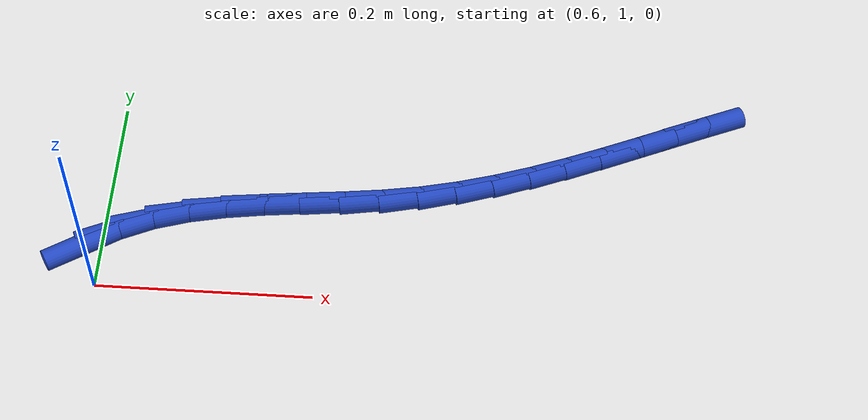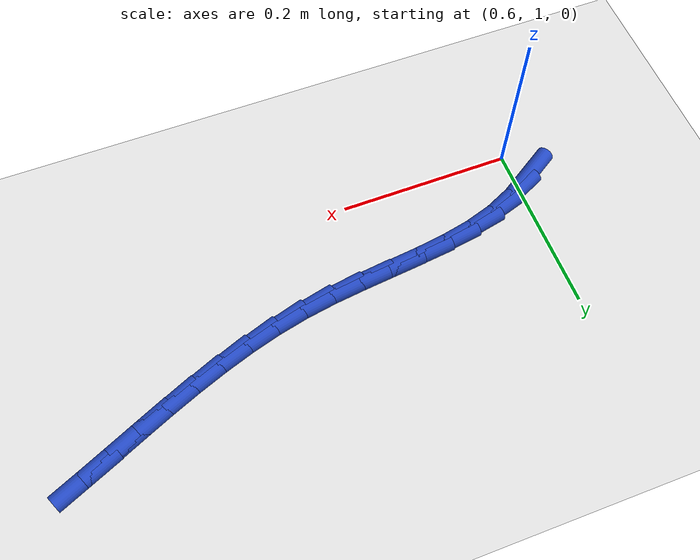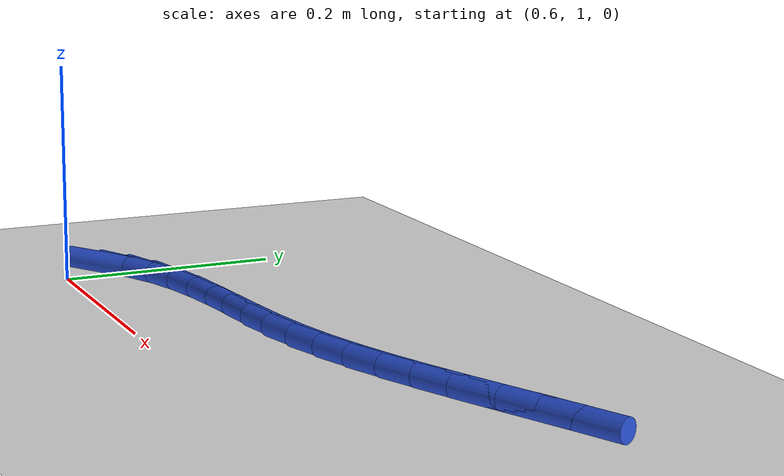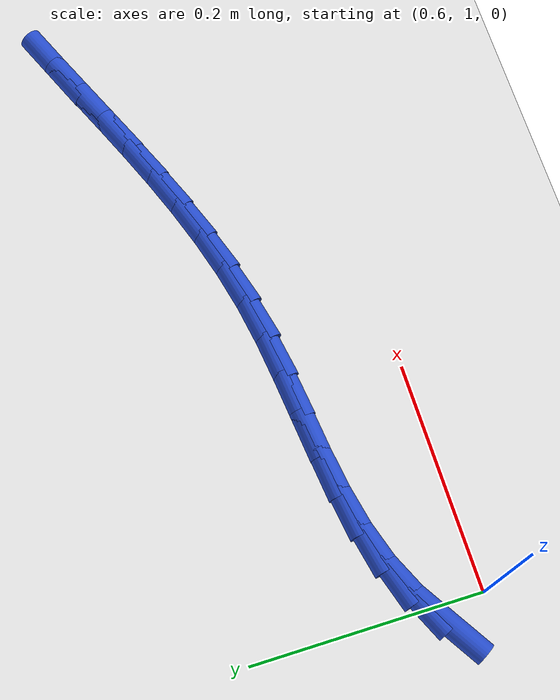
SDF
<sdf version="1.6">
 <world name="default">
  <model name="ground_plane">
   <static>1</static>
   <link name="link">
    <collision name="collision">
     <geometry><plane><normal>0 0 1</normal><size>100 100</size></plane></geometry>
     <surface><friction><ode><mu>100</mu><mu2>50</mu2></ode></friction></surface>
    </collision>
    <visual name="visual">
     <cast_shadows>0</cast_shadows>
     <geometry><plane><normal>0 0 1</normal><size>100 100</size></plane></geometry>
     <material>
      <script><uri>file://media/materials/scripts/gazebo.material</uri><name>Gazebo/WhiteGlow</name></script>
     </material>
    </visual>
   </link>
  </model>
  <model name="line">
   <link name="link_34">
    <pose>0.5863086285199981 1.0384083316780028 0.01 0 1.57 0.5590675670114021</pose>
    <collision name="collision">
     <geometry><cylinder><radius>0.01</radius><length>0.08</length></cylinder></geometry>
    </collision>
    <visual name="visual">
     <material>
      <script><name>Gazebo/Blue</name><uri>file://media/materials/scripts/gazebo.material</uri></script>
     </material>
     <geometry><cylinder><radius>0.01</radius><length>0.08</length></cylinder></geometry>
    </visual>
   </link>
   <link name="link_35">
    <pose>0.6143662470335687 1.055962618667085 0.01 0 1.57 0.42720990839506334</pose>
    <collision name="collision">
     <geometry><cylinder><radius>0.01</radius><length>0.08</length></cylinder></geometry>
    </collision>
    <visual name="visual">
     <material>
      <script><name>Gazebo/Blue</name><uri>file://media/materials/scripts/gazebo.material</uri></script>
     </material>
     <geometry><cylinder><radius>0.01</radius><length>0.08</length></cylinder></geometry>
    </visual>
   </link>
   <link name="link_36">
    <pose>0.644567732208844 1.0697117961601972 0.01 0 1.57 0.2996946086009204</pose>
    <collision name="collision">
     <geometry><cylinder><radius>0.01</radius><length>0.08</length></cylinder></geometry>
    </collision>
    <visual name="visual">
     <material>
      <script><name>Gazebo/Blue</name><uri>file://media/materials/scripts/gazebo.material</uri></script>
     </material>
     <geometry><cylinder><radius>0.01</radius><length>0.08</length></cylinder></geometry>
    </visual>
   </link>
   <link name="link_37">
    <pose>0.6769178135032915 1.0797080252154 0.01 0 1.57 0.2046014269525854</pose>
    <collision name="collision">
     <geometry><cylinder><radius>0.01</radius><length>0.08</length></cylinder></geometry>
    </collision>
    <visual name="visual">
     <material>
      <script><name>Gazebo/Blue</name><uri>file://media/materials/scripts/gazebo.material</uri></script>
     </material>
     <geometry><cylinder><radius>0.01</radius><length>0.08</length></cylinder></geometry>
    </visual>
   </link>
   <link name="link_38">
    <pose>0.7110029158059558 1.0867808559966627 0.01 0 1.57 0.14181475765033555</pose>
    <collision name="collision">
     <geometry><cylinder><radius>0.01</radius><length>0.08</length></cylinder></geometry>
    </collision>
    <visual name="visual">
     <material>
      <script><name>Gazebo/Blue</name><uri>file://media/materials/scripts/gazebo.material</uri></script>
     </material>
     <geometry><cylinder><radius>0.01</radius><length>0.08</length></cylinder></geometry>
    </visual>
   </link>
   <link name="link_39">
    <pose>0.7463714256791582 1.091830530176089 0.01 0 1.57 0.10805063357847144</pose>
    <collision name="collision">
     <geometry><cylinder><radius>0.01</radius><length>0.08</length></cylinder></geometry>
    </collision>
    <visual name="visual">
     <material>
      <script><name>Gazebo/Blue</name><uri>file://media/materials/scripts/gazebo.material</uri></script>
     </material>
     <geometry><cylinder><radius>0.01</radius><length>0.08</length></cylinder></geometry>
    </visual>
   </link>
   <link name="link_40">
    <pose>0.7825717296852219 1.0957572894257843 0.01 0 1.57 0.100914562779345</pose>
    <collision name="collision">
     <geometry><cylinder><radius>0.01</radius><length>0.08</length></cylinder></geometry>
    </collision>
    <visual name="visual">
     <material>
      <script><name>Gazebo/Blue</name><uri>file://media/materials/scripts/gazebo.material</uri></script>
     </material>
     <geometry><cylinder><radius>0.01</radius><length>0.08</length></cylinder></geometry>
    </visual>
   </link>
   <link name="link_41">
    <pose>0.8191522143864688 1.0994613754178508 0.01 0 1.57 0.1194442675543675</pose>
    <collision name="collision">
     <geometry><cylinder><radius>0.01</radius><length>0.08</length></cylinder></geometry>
    </collision>
    <visual name="visual">
     <material>
      <script><name>Gazebo/Blue</name><uri>file://media/materials/scripts/gazebo.material</uri></script>
     </material>
     <geometry><cylinder><radius>0.01</radius><length>0.08</length></cylinder></geometry>
    </visual>
   </link>
   <link name="link_42">
    <pose>0.8556612663452208 1.1038430298243942 0.01 0 1.57 0.16401281167441317</pose>
    <collision name="collision">
     <geometry><cylinder><radius>0.01</radius><length>0.08</length></cylinder></geometry>
    </collision>
    <visual name="visual">
     <material>
      <script><name>Gazebo/Blue</name><uri>file://media/materials/scripts/gazebo.material</uri></script>
     </material>
     <geometry><cylinder><radius>0.01</radius><length>0.08</length></cylinder></geometry>
    </visual>
   </link>
   <link name="link_43">
    <pose>0.8916489024307759 1.1097989645073283 0.01 0 1.57 0.22446744807597416</pose>
    <collision name="collision">
     <geometry><cylinder><radius>0.01</radius><length>0.08</length></cylinder></geometry>
    </collision>
    <visual name="visual">
     <material>
      <script><name>Gazebo/Blue</name><uri>file://media/materials/scripts/gazebo.material</uri></script>
     </material>
     <geometry><cylinder><radius>0.01</radius><length>0.08</length></cylinder></geometry>
    </visual>
   </link>
   <link name="link_44">
    <pose>0.9268457147240168 1.117834924331884 0.01 0 1.57 0.2791058630290151</pose>
    <collision name="collision">
     <geometry><cylinder><radius>0.01</radius><length>0.08</length></cylinder></geometry>
    </collision>
    <visual name="visual">
     <material>
      <script><name>Gazebo/Blue</name><uri>file://media/materials/scripts/gazebo.material</uri></script>
     </material>
     <geometry><cylinder><radius>0.01</radius><length>0.08</length></cylinder></geometry>
    </visual>
   </link>
   <link name="link_45">
    <pose>0.9613243617698087 1.1277160392310677 0.01 0 1.57 0.32489434794419864</pose>
    <collision name="collision">
     <geometry><cylinder><radius>0.01</radius><length>0.08</length></cylinder></geometry>
    </collision>
    <visual name="visual">
     <material>
      <script><name>Gazebo/Blue</name><uri>file://media/materials/scripts/gazebo.material</uri></script>
     </material>
     <geometry><cylinder><radius>0.01</radius><length>0.08</length></cylinder></geometry>
    </visual>
   </link>
   <link name="link_46">
    <pose>0.995195624142882 1.139124900369732 0.01 0 1.57 0.3614920028607713</pose>
    <collision name="collision">
     <geometry><cylinder><radius>0.01</radius><length>0.08</length></cylinder></geometry>
    </collision>
    <visual name="visual">
     <material>
      <script><name>Gazebo/Blue</name><uri>file://media/materials/scripts/gazebo.material</uri></script>
     </material>
     <geometry><cylinder><radius>0.01</radius><length>0.08</length></cylinder></geometry>
    </visual>
   </link>
   <link name="link_47">
    <pose>1.0285702824179659 1.1517440989127286 0.01 0 1.57 0.3887521610513202</pose>
    <collision name="collision">
     <geometry><cylinder><radius>0.01</radius><length>0.08</length></cylinder></geometry>
    </collision>
    <visual name="visual">
     <material>
      <script><name>Gazebo/Blue</name><uri>file://media/materials/scripts/gazebo.material</uri></script>
     </material>
     <geometry><cylinder><radius>0.01</radius><length>0.08</length></cylinder></geometry>
    </visual>
   </link>
   <link name="link_48">
    <pose>1.0615591171697907 1.1652562260249106 0.01 0 1.57 0.4066323781026633</pose>
    <collision name="collision">
     <geometry><cylinder><radius>0.01</radius><length>0.08</length></cylinder></geometry>
    </collision>
    <visual name="visual">
     <material>
      <script><name>Gazebo/Blue</name><uri>file://media/materials/scripts/gazebo.material</uri></script>
     </material>
     <geometry><cylinder><radius>0.01</radius><length>0.08</length></cylinder></geometry>
    </visual>
   </link>
   <link name="link_49">
    <pose>1.0942729089730856 1.1793438728711303 0.01 0 1.57 0.4151235438506848</pose>
    <collision name="collision">
     <geometry><cylinder><radius>0.01</radius><length>0.08</length></cylinder></geometry>
    </collision>
    <visual name="visual">
     <material>
      <script><name>Gazebo/Blue</name><uri>file://media/materials/scripts/gazebo.material</uri></script>
     </material>
     <geometry><cylinder><radius>0.01</radius><length>0.08</length></cylinder></geometry>
    </visual>
   </link>
   <link name="link_50">
    <pose>1.1268224384025802 1.1936896306162392 0.01 0 1.57 0.41420258081959976</pose>
    <collision name="collision">
     <geometry><cylinder><radius>0.01</radius><length>0.08</length></cylinder></geometry>
    </collision>
    <visual name="visual">
     <material>
      <script><name>Gazebo/Blue</name><uri>file://media/materials/scripts/gazebo.material</uri></script>
     </material>
     <geometry><cylinder><radius>0.01</radius><length>0.08</length></cylinder></geometry>
    </visual>
   </link>
   <link name="link_51">
    <pose>1.1593184860330048 1.2079760904250902 0.01 0 1.57 0.40380957212478696</pose>
    <collision name="collision">
     <geometry><cylinder><radius>0.01</radius><length>0.08</length></cylinder></geometry>
    </collision>
    <visual name="visual">
     <material>
      <script><name>Gazebo/Blue</name><uri>file://media/materials/scripts/gazebo.material</uri></script>
     </material>
     <geometry><cylinder><radius>0.01</radius><length>0.08</length></cylinder></geometry>
    </visual>
   </link>
  </model>
 </world>
</sdf>
